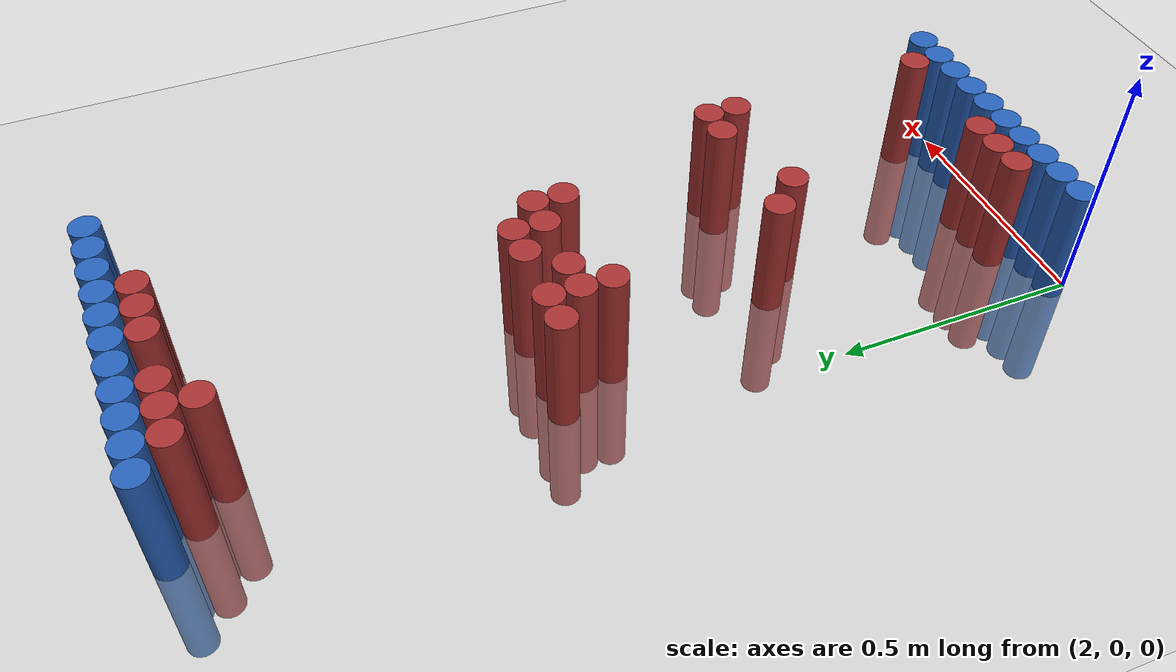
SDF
<sdf version="1.6">
 <world name="default">
  <model name="ground_plane">
   <static>1</static>
   <link name="link">
    <collision name="collision">
     <geometry><plane><normal>0 0 1</normal><size>100 100</size></plane></geometry>
     <surface><friction><ode><mu>100</mu><mu2>50</mu2></ode></friction></surface>
    </collision>
    <visual name="visual">
     <cast_shadows>0</cast_shadows>
     <geometry><plane><normal>0 0 1</normal><size>100 100</size></plane></geometry>
     <material>
      <script><uri>file://media/materials/scripts/gazebo.material</uri><name>Gazebo/Grey</name></script>
     </material>
    </visual>
   </link>
  </model>
  <model name="unit_cylinder_93">
   <static>1</static>
   <pose>2.010000 0.030000 0.000000 0.000000 0.000000 0.000000</pose>
   <link name="link">
    <inertial>
     <mass>1</mass>
     <inertia><ixx>0.145833</ixx><ixy>0</ixy><ixz>0</ixz><iyy>0.145833</iyy><iyz>0</iyz><izz>0.125</izz></inertia>
    </inertial>
    <collision name="collision">
     <geometry><cylinder><radius>0.030000</radius><length>0.5</length></cylinder></geometry>
    </collision>
    <visual name="visual">
     <geometry><cylinder><radius>0.030000</radius><length>0.5</length></cylinder></geometry>
     <material>
      <ambient>0.152000 0.379000 0.720000 1</ambient>
      <diffuse>0.152000 0.379000 0.720000 1</diffuse>
     </material>
     <material>
      <script><name>Gazebo/Grey</name><uri>file://media/materials/scripts/gazebo.material</uri></script>
     </material>
    </visual>
   </link>
  </model>
  <model name="unit_cylinder_94">
   <static>1</static>
   <pose>2.010000 1.770000 0.000000 0.000000 0.000000 0.000000</pose>
   <link name="link">
    <inertial>
     <mass>1</mass>
     <inertia><ixx>0.145833</ixx><ixy>0</ixy><ixz>0</ixz><iyy>0.145833</iyy><iyz>0</iyz><izz>0.125</izz></inertia>
    </inertial>
    <collision name="collision">
     <geometry><cylinder><radius>0.030000</radius><length>0.5</length></cylinder></geometry>
    </collision>
    <visual name="visual">
     <geometry><cylinder><radius>0.030000</radius><length>0.5</length></cylinder></geometry>
     <material>
      <ambient>0.152000 0.379000 0.720000 1</ambient>
      <diffuse>0.152000 0.379000 0.720000 1</diffuse>
     </material>
     <material>
      <script><name>Gazebo/Grey</name><uri>file://media/materials/scripts/gazebo.material</uri></script>
     </material>
    </visual>
   </link>
  </model>
  <model name="unit_cylinder_95">
   <static>1</static>
   <pose>2.070000 1.770000 0.000000 0.000000 0.000000 0.000000</pose>
   <link name="link">
    <inertial>
     <mass>1</mass>
     <inertia><ixx>0.145833</ixx><ixy>0</ixy><ixz>0</ixz><iyy>0.145833</iyy><iyz>0</iyz><izz>0.125</izz></inertia>
    </inertial>
    <collision name="collision">
     <geometry><cylinder><radius>0.030000</radius><length>0.5</length></cylinder></geometry>
    </collision>
    <visual name="visual">
     <geometry><cylinder><radius>0.030000</radius><length>0.5</length></cylinder></geometry>
     <material>
      <ambient>0.152000 0.379000 0.720000 1</ambient>
      <diffuse>0.152000 0.379000 0.720000 1</diffuse>
     </material>
     <material>
      <script><name>Gazebo/Grey</name><uri>file://media/materials/scripts/gazebo.material</uri></script>
     </material>
    </visual>
   </link>
  </model>
  <model name="unit_cylinder_96">
   <static>1</static>
   <pose>2.130000 1.770000 0.000000 0.000000 0.000000 0.000000</pose>
   <link name="link">
    <inertial>
     <mass>1</mass>
     <inertia><ixx>0.145833</ixx><ixy>0</ixy><ixz>0</ixz><iyy>0.145833</iyy><iyz>0</iyz><izz>0.125</izz></inertia>
    </inertial>
    <collision name="collision">
     <geometry><cylinder><radius>0.030000</radius><length>0.5</length></cylinder></geometry>
    </collision>
    <visual name="visual">
     <geometry><cylinder><radius>0.030000</radius><length>0.5</length></cylinder></geometry>
     <material>
      <ambient>0.152000 0.379000 0.720000 1</ambient>
      <diffuse>0.152000 0.379000 0.720000 1</diffuse>
     </material>
     <material>
      <script><name>Gazebo/Grey</name><uri>file://media/materials/scripts/gazebo.material</uri></script>
     </material>
    </visual>
   </link>
  </model>
  <model name="unit_cylinder_97">
   <static>1</static>
   <pose>2.190000 1.770000 0.000000 0.000000 0.000000 0.000000</pose>
   <link name="link">
    <inertial>
     <mass>1</mass>
     <inertia><ixx>0.145833</ixx><ixy>0</ixy><ixz>0</ixz><iyy>0.145833</iyy><iyz>0</iyz><izz>0.125</izz></inertia>
    </inertial>
    <collision name="collision">
     <geometry><cylinder><radius>0.030000</radius><length>0.5</length></cylinder></geometry>
    </collision>
    <visual name="visual">
     <geometry><cylinder><radius>0.030000</radius><length>0.5</length></cylinder></geometry>
     <material>
      <ambient>0.152000 0.379000 0.720000 1</ambient>
      <diffuse>0.152000 0.379000 0.720000 1</diffuse>
     </material>
     <material>
      <script><name>Gazebo/Grey</name><uri>file://media/materials/scripts/gazebo.material</uri></script>
     </material>
    </visual>
   </link>
  </model>
  <model name="unit_cylinder_98">
   <static>1</static>
   <pose>2.250000 1.770000 0.000000 0.000000 0.000000 0.000000</pose>
   <link name="link">
    <inertial>
     <mass>1</mass>
     <inertia><ixx>0.145833</ixx><ixy>0</ixy><ixz>0</ixz><iyy>0.145833</iyy><iyz>0</iyz><izz>0.125</izz></inertia>
    </inertial>
    <collision name="collision">
     <geometry><cylinder><radius>0.030000</radius><length>0.5</length></cylinder></geometry>
    </collision>
    <visual name="visual">
     <geometry><cylinder><radius>0.030000</radius><length>0.5</length></cylinder></geometry>
     <material>
      <ambient>0.152000 0.379000 0.720000 1</ambient>
      <diffuse>0.152000 0.379000 0.720000 1</diffuse>
     </material>
     <material>
      <script><name>Gazebo/Grey</name><uri>file://media/materials/scripts/gazebo.material</uri></script>
     </material>
    </visual>
   </link>
  </model>
  <model name="unit_cylinder_99">
   <static>1</static>
   <pose>2.310000 1.770000 0.000000 0.000000 0.000000 0.000000</pose>
   <link name="link">
    <inertial>
     <mass>1</mass>
     <inertia><ixx>0.145833</ixx><ixy>0</ixy><ixz>0</ixz><iyy>0.145833</iyy><iyz>0</iyz><izz>0.125</izz></inertia>
    </inertial>
    <collision name="collision">
     <geometry><cylinder><radius>0.030000</radius><length>0.5</length></cylinder></geometry>
    </collision>
    <visual name="visual">
     <geometry><cylinder><radius>0.030000</radius><length>0.5</length></cylinder></geometry>
     <material>
      <ambient>0.152000 0.379000 0.720000 1</ambient>
      <diffuse>0.152000 0.379000 0.720000 1</diffuse>
     </material>
     <material>
      <script><name>Gazebo/Grey</name><uri>file://media/materials/scripts/gazebo.material</uri></script>
     </material>
    </visual>
   </link>
  </model>
  <model name="unit_cylinder_100">
   <static>1</static>
   <pose>2.370000 1.770000 0.000000 0.000000 0.000000 0.000000</pose>
   <link name="link">
    <inertial>
     <mass>1</mass>
     <inertia><ixx>0.145833</ixx><ixy>0</ixy><ixz>0</ixz><iyy>0.145833</iyy><iyz>0</iyz><izz>0.125</izz></inertia>
    </inertial>
    <collision name="collision">
     <geometry><cylinder><radius>0.030000</radius><length>0.5</length></cylinder></geometry>
    </collision>
    <visual name="visual">
     <geometry><cylinder><radius>0.030000</radius><length>0.5</length></cylinder></geometry>
     <material>
      <ambient>0.152000 0.379000 0.720000 1</ambient>
      <diffuse>0.152000 0.379000 0.720000 1</diffuse>
     </material>
     <material>
      <script><name>Gazebo/Grey</name><uri>file://media/materials/scripts/gazebo.material</uri></script>
     </material>
    </visual>
   </link>
  </model>
  <model name="unit_cylinder_101">
   <static>1</static>
   <pose>2.430000 1.770000 0.000000 0.000000 0.000000 0.000000</pose>
   <link name="link">
    <inertial>
     <mass>1</mass>
     <inertia><ixx>0.145833</ixx><ixy>0</ixy><ixz>0</ixz><iyy>0.145833</iyy><iyz>0</iyz><izz>0.125</izz></inertia>
    </inertial>
    <collision name="collision">
     <geometry><cylinder><radius>0.030000</radius><length>0.5</length></cylinder></geometry>
    </collision>
    <visual name="visual">
     <geometry><cylinder><radius>0.030000</radius><length>0.5</length></cylinder></geometry>
     <material>
      <ambient>0.152000 0.379000 0.720000 1</ambient>
      <diffuse>0.152000 0.379000 0.720000 1</diffuse>
     </material>
     <material>
      <script><name>Gazebo/Grey</name><uri>file://media/materials/scripts/gazebo.material</uri></script>
     </material>
    </visual>
   </link>
  </model>
  <model name="unit_cylinder_102">
   <static>1</static>
   <pose>2.490000 1.770000 0.000000 0.000000 0.000000 0.000000</pose>
   <link name="link">
    <inertial>
     <mass>1</mass>
     <inertia><ixx>0.145833</ixx><ixy>0</ixy><ixz>0</ixz><iyy>0.145833</iyy><iyz>0</iyz><izz>0.125</izz></inertia>
    </inertial>
    <collision name="collision">
     <geometry><cylinder><radius>0.030000</radius><length>0.5</length></cylinder></geometry>
    </collision>
    <visual name="visual">
     <geometry><cylinder><radius>0.030000</radius><length>0.5</length></cylinder></geometry>
     <material>
      <ambient>0.152000 0.379000 0.720000 1</ambient>
      <diffuse>0.152000 0.379000 0.720000 1</diffuse>
     </material>
     <material>
      <script><name>Gazebo/Grey</name><uri>file://media/materials/scripts/gazebo.material</uri></script>
     </material>
    </visual>
   </link>
  </model>
  <model name="unit_cylinder_103">
   <static>1</static>
   <pose>2.550000 1.770000 0.000000 0.000000 0.000000 0.000000</pose>
   <link name="link">
    <inertial>
     <mass>1</mass>
     <inertia><ixx>0.145833</ixx><ixy>0</ixy><ixz>0</ixz><iyy>0.145833</iyy><iyz>0</iyz><izz>0.125</izz></inertia>
    </inertial>
    <collision name="collision">
     <geometry><cylinder><radius>0.030000</radius><length>0.5</length></cylinder></geometry>
    </collision>
    <visual name="visual">
     <geometry><cylinder><radius>0.030000</radius><length>0.5</length></cylinder></geometry>
     <material>
      <ambient>0.152000 0.379000 0.720000 1</ambient>
      <diffuse>0.152000 0.379000 0.720000 1</diffuse>
     </material>
     <material>
      <script><name>Gazebo/Grey</name><uri>file://media/materials/scripts/gazebo.material</uri></script>
     </material>
    </visual>
   </link>
  </model>
  <model name="unit_cylinder_104">
   <static>1</static>
   <pose>2.610000 1.770000 0.000000 0.000000 0.000000 0.000000</pose>
   <link name="link">
    <inertial>
     <mass>1</mass>
     <inertia><ixx>0.145833</ixx><ixy>0</ixy><ixz>0</ixz><iyy>0.145833</iyy><iyz>0</iyz><izz>0.125</izz></inertia>
    </inertial>
    <collision name="collision">
     <geometry><cylinder><radius>0.030000</radius><length>0.5</length></cylinder></geometry>
    </collision>
    <visual name="visual">
     <geometry><cylinder><radius>0.030000</radius><length>0.5</length></cylinder></geometry>
     <material>
      <ambient>0.152000 0.379000 0.720000 1</ambient>
      <diffuse>0.152000 0.379000 0.720000 1</diffuse>
     </material>
     <material>
      <script><name>Gazebo/Grey</name><uri>file://media/materials/scripts/gazebo.material</uri></script>
     </material>
    </visual>
   </link>
  </model>
  <model name="unit_cylinder_125">
   <static>1</static>
   <pose>2.070000 1.710000 0.000000 0.000000 0.000000 0.000000</pose>
   <link name="link">
    <inertial>
     <mass>1</mass>
     <inertia><ixx>0.145833</ixx><ixy>0</ixy><ixz>0</ixz><iyy>0.145833</iyy><iyz>0</iyz><izz>0.125</izz></inertia>
    </inertial>
    <collision name="collision">
     <geometry><cylinder><radius>0.030000</radius><length>0.5</length></cylinder></geometry>
    </collision>
    <visual name="visual">
     <geometry><cylinder><radius>0.030000</radius><length>0.5</length></cylinder></geometry>
     <material>
      <ambient>0.648000 0.192000 0.192000 1</ambient>
      <diffuse>0.648000 0.192000 0.192000 1</diffuse>
     </material>
     <material>
      <script><name>Gazebo/Grey</name><uri>file://media/materials/scripts/gazebo.material</uri></script>
     </material>
    </visual>
   </link>
  </model>
  <model name="unit_cylinder_126">
   <static>1</static>
   <pose>2.130000 1.710000 0.000000 0.000000 0.000000 0.000000</pose>
   <link name="link">
    <inertial>
     <mass>1</mass>
     <inertia><ixx>0.145833</ixx><ixy>0</ixy><ixz>0</ixz><iyy>0.145833</iyy><iyz>0</iyz><izz>0.125</izz></inertia>
    </inertial>
    <collision name="collision">
     <geometry><cylinder><radius>0.030000</radius><length>0.5</length></cylinder></geometry>
    </collision>
    <visual name="visual">
     <geometry><cylinder><radius>0.030000</radius><length>0.5</length></cylinder></geometry>
     <material>
      <ambient>0.648000 0.192000 0.192000 1</ambient>
      <diffuse>0.648000 0.192000 0.192000 1</diffuse>
     </material>
     <material>
      <script><name>Gazebo/Grey</name><uri>file://media/materials/scripts/gazebo.material</uri></script>
     </material>
    </visual>
   </link>
  </model>
  <model name="unit_cylinder_127">
   <static>1</static>
   <pose>2.190000 1.710000 0.000000 0.000000 0.000000 0.000000</pose>
   <link name="link">
    <inertial>
     <mass>1</mass>
     <inertia><ixx>0.145833</ixx><ixy>0</ixy><ixz>0</ixz><iyy>0.145833</iyy><iyz>0</iyz><izz>0.125</izz></inertia>
    </inertial>
    <collision name="collision">
     <geometry><cylinder><radius>0.030000</radius><length>0.5</length></cylinder></geometry>
    </collision>
    <visual name="visual">
     <geometry><cylinder><radius>0.030000</radius><length>0.5</length></cylinder></geometry>
     <material>
      <ambient>0.648000 0.192000 0.192000 1</ambient>
      <diffuse>0.648000 0.192000 0.192000 1</diffuse>
     </material>
     <material>
      <script><name>Gazebo/Grey</name><uri>file://media/materials/scripts/gazebo.material</uri></script>
     </material>
    </visual>
   </link>
  </model>
  <model name="unit_cylinder_128">
   <static>1</static>
   <pose>2.310000 1.710000 0.000000 0.000000 0.000000 0.000000</pose>
   <link name="link">
    <inertial>
     <mass>1</mass>
     <inertia><ixx>0.145833</ixx><ixy>0</ixy><ixz>0</ixz><iyy>0.145833</iyy><iyz>0</iyz><izz>0.125</izz></inertia>
    </inertial>
    <collision name="collision">
     <geometry><cylinder><radius>0.030000</radius><length>0.5</length></cylinder></geometry>
    </collision>
    <visual name="visual">
     <geometry><cylinder><radius>0.030000</radius><length>0.5</length></cylinder></geometry>
     <material>
      <ambient>0.648000 0.192000 0.192000 1</ambient>
      <diffuse>0.648000 0.192000 0.192000 1</diffuse>
     </material>
     <material>
      <script><name>Gazebo/Grey</name><uri>file://media/materials/scripts/gazebo.material</uri></script>
     </material>
    </visual>
   </link>
  </model>
  <model name="unit_cylinder_129">
   <static>1</static>
   <pose>2.370000 1.710000 0.000000 0.000000 0.000000 0.000000</pose>
   <link name="link">
    <inertial>
     <mass>1</mass>
     <inertia><ixx>0.145833</ixx><ixy>0</ixy><ixz>0</ixz><iyy>0.145833</iyy><iyz>0</iyz><izz>0.125</izz></inertia>
    </inertial>
    <collision name="collision">
     <geometry><cylinder><radius>0.030000</radius><length>0.5</length></cylinder></geometry>
    </collision>
    <visual name="visual">
     <geometry><cylinder><radius>0.030000</radius><length>0.5</length></cylinder></geometry>
     <material>
      <ambient>0.648000 0.192000 0.192000 1</ambient>
      <diffuse>0.648000 0.192000 0.192000 1</diffuse>
     </material>
     <material>
      <script><name>Gazebo/Grey</name><uri>file://media/materials/scripts/gazebo.material</uri></script>
     </material>
    </visual>
   </link>
  </model>
  <model name="unit_cylinder_130">
   <static>1</static>
   <pose>2.430000 1.710000 0.000000 0.000000 0.000000 0.000000</pose>
   <link name="link">
    <inertial>
     <mass>1</mass>
     <inertia><ixx>0.145833</ixx><ixy>0</ixy><ixz>0</ixz><iyy>0.145833</iyy><iyz>0</iyz><izz>0.125</izz></inertia>
    </inertial>
    <collision name="collision">
     <geometry><cylinder><radius>0.030000</radius><length>0.5</length></cylinder></geometry>
    </collision>
    <visual name="visual">
     <geometry><cylinder><radius>0.030000</radius><length>0.5</length></cylinder></geometry>
     <material>
      <ambient>0.648000 0.192000 0.192000 1</ambient>
      <diffuse>0.648000 0.192000 0.192000 1</diffuse>
     </material>
     <material>
      <script><name>Gazebo/Grey</name><uri>file://media/materials/scripts/gazebo.material</uri></script>
     </material>
    </visual>
   </link>
  </model>
  <model name="unit_cylinder_140">
   <static>1</static>
   <pose>2.130000 1.650000 0.000000 0.000000 0.000000 0.000000</pose>
   <link name="link">
    <inertial>
     <mass>1</mass>
     <inertia><ixx>0.145833</ixx><ixy>0</ixy><ixz>0</ixz><iyy>0.145833</iyy><iyz>0</iyz><izz>0.125</izz></inertia>
    </inertial>
    <collision name="collision">
     <geometry><cylinder><radius>0.030000</radius><length>0.5</length></cylinder></geometry>
    </collision>
    <visual name="visual">
     <geometry><cylinder><radius>0.030000</radius><length>0.5</length></cylinder></geometry>
     <material>
      <ambient>0.648000 0.192000 0.192000 1</ambient>
      <diffuse>0.648000 0.192000 0.192000 1</diffuse>
     </material>
     <material>
      <script><name>Gazebo/Grey</name><uri>file://media/materials/scripts/gazebo.material</uri></script>
     </material>
    </visual>
   </link>
  </model>
  <model name="unit_cylinder_158">
   <static>1</static>
   <pose>2.070000 1.050000 0.000000 0.000000 0.000000 0.000000</pose>
   <link name="link">
    <inertial>
     <mass>1</mass>
     <inertia><ixx>0.145833</ixx><ixy>0</ixy><ixz>0</ixz><iyy>0.145833</iyy><iyz>0</iyz><izz>0.125</izz></inertia>
    </inertial>
    <collision name="collision">
     <geometry><cylinder><radius>0.030000</radius><length>0.5</length></cylinder></geometry>
    </collision>
    <visual name="visual">
     <geometry><cylinder><radius>0.030000</radius><length>0.5</length></cylinder></geometry>
     <material>
      <ambient>0.648000 0.192000 0.192000 1</ambient>
      <diffuse>0.648000 0.192000 0.192000 1</diffuse>
     </material>
     <material>
      <script><name>Gazebo/Grey</name><uri>file://media/materials/scripts/gazebo.material</uri></script>
     </material>
    </visual>
   </link>
  </model>
  <model name="unit_cylinder_159">
   <static>1</static>
   <pose>2.130000 1.050000 0.000000 0.000000 0.000000 0.000000</pose>
   <link name="link">
    <inertial>
     <mass>1</mass>
     <inertia><ixx>0.145833</ixx><ixy>0</ixy><ixz>0</ixz><iyy>0.145833</iyy><iyz>0</iyz><izz>0.125</izz></inertia>
    </inertial>
    <collision name="collision">
     <geometry><cylinder><radius>0.030000</radius><length>0.5</length></cylinder></geometry>
    </collision>
    <visual name="visual">
     <geometry><cylinder><radius>0.030000</radius><length>0.5</length></cylinder></geometry>
     <material>
      <ambient>0.648000 0.192000 0.192000 1</ambient>
      <diffuse>0.648000 0.192000 0.192000 1</diffuse>
     </material>
     <material>
      <script><name>Gazebo/Grey</name><uri>file://media/materials/scripts/gazebo.material</uri></script>
     </material>
    </visual>
   </link>
  </model>
  <model name="unit_cylinder_160">
   <static>1</static>
   <pose>2.250000 1.050000 0.000000 0.000000 0.000000 0.000000</pose>
   <link name="link">
    <inertial>
     <mass>1</mass>
     <inertia><ixx>0.145833</ixx><ixy>0</ixy><ixz>0</ixz><iyy>0.145833</iyy><iyz>0</iyz><izz>0.125</izz></inertia>
    </inertial>
    <collision name="collision">
     <geometry><cylinder><radius>0.030000</radius><length>0.5</length></cylinder></geometry>
    </collision>
    <visual name="visual">
     <geometry><cylinder><radius>0.030000</radius><length>0.5</length></cylinder></geometry>
     <material>
      <ambient>0.648000 0.192000 0.192000 1</ambient>
      <diffuse>0.648000 0.192000 0.192000 1</diffuse>
     </material>
     <material>
      <script><name>Gazebo/Grey</name><uri>file://media/materials/scripts/gazebo.material</uri></script>
     </material>
    </visual>
   </link>
  </model>
  <model name="unit_cylinder_161">
   <static>1</static>
   <pose>2.310000 1.050000 0.000000 0.000000 0.000000 0.000000</pose>
   <link name="link">
    <inertial>
     <mass>1</mass>
     <inertia><ixx>0.145833</ixx><ixy>0</ixy><ixz>0</ixz><iyy>0.145833</iyy><iyz>0</iyz><izz>0.125</izz></inertia>
    </inertial>
    <collision name="collision">
     <geometry><cylinder><radius>0.030000</radius><length>0.5</length></cylinder></geometry>
    </collision>
    <visual name="visual">
     <geometry><cylinder><radius>0.030000</radius><length>0.5</length></cylinder></geometry>
     <material>
      <ambient>0.648000 0.192000 0.192000 1</ambient>
      <diffuse>0.648000 0.192000 0.192000 1</diffuse>
     </material>
     <material>
      <script><name>Gazebo/Grey</name><uri>file://media/materials/scripts/gazebo.material</uri></script>
     </material>
    </visual>
   </link>
  </model>
  <model name="unit_cylinder_162">
   <static>1</static>
   <pose>2.130000 0.990000 0.000000 0.000000 0.000000 0.000000</pose>
   <link name="link">
    <inertial>
     <mass>1</mass>
     <inertia><ixx>0.145833</ixx><ixy>0</ixy><ixz>0</ixz><iyy>0.145833</iyy><iyz>0</iyz><izz>0.125</izz></inertia>
    </inertial>
    <collision name="collision">
     <geometry><cylinder><radius>0.030000</radius><length>0.5</length></cylinder></geometry>
    </collision>
    <visual name="visual">
     <geometry><cylinder><radius>0.030000</radius><length>0.5</length></cylinder></geometry>
     <material>
      <ambient>0.648000 0.192000 0.192000 1</ambient>
      <diffuse>0.648000 0.192000 0.192000 1</diffuse>
     </material>
     <material>
      <script><name>Gazebo/Grey</name><uri>file://media/materials/scripts/gazebo.material</uri></script>
     </material>
    </visual>
   </link>
  </model>
  <model name="unit_cylinder_163">
   <static>1</static>
   <pose>2.190000 0.990000 0.000000 0.000000 0.000000 0.000000</pose>
   <link name="link">
    <inertial>
     <mass>1</mass>
     <inertia><ixx>0.145833</ixx><ixy>0</ixy><ixz>0</ixz><iyy>0.145833</iyy><iyz>0</iyz><izz>0.125</izz></inertia>
    </inertial>
    <collision name="collision">
     <geometry><cylinder><radius>0.030000</radius><length>0.5</length></cylinder></geometry>
    </collision>
    <visual name="visual">
     <geometry><cylinder><radius>0.030000</radius><length>0.5</length></cylinder></geometry>
     <material>
      <ambient>0.648000 0.192000 0.192000 1</ambient>
      <diffuse>0.648000 0.192000 0.192000 1</diffuse>
     </material>
     <material>
      <script><name>Gazebo/Grey</name><uri>file://media/materials/scripts/gazebo.material</uri></script>
     </material>
    </visual>
   </link>
  </model>
  <model name="unit_cylinder_164">
   <static>1</static>
   <pose>2.310000 0.990000 0.000000 0.000000 0.000000 0.000000</pose>
   <link name="link">
    <inertial>
     <mass>1</mass>
     <inertia><ixx>0.145833</ixx><ixy>0</ixy><ixz>0</ixz><iyy>0.145833</iyy><iyz>0</iyz><izz>0.125</izz></inertia>
    </inertial>
    <collision name="collision">
     <geometry><cylinder><radius>0.030000</radius><length>0.5</length></cylinder></geometry>
    </collision>
    <visual name="visual">
     <geometry><cylinder><radius>0.030000</radius><length>0.5</length></cylinder></geometry>
     <material>
      <ambient>0.648000 0.192000 0.192000 1</ambient>
      <diffuse>0.648000 0.192000 0.192000 1</diffuse>
     </material>
     <material>
      <script><name>Gazebo/Grey</name><uri>file://media/materials/scripts/gazebo.material</uri></script>
     </material>
    </visual>
   </link>
  </model>
  <model name="unit_cylinder_165">
   <static>1</static>
   <pose>2.370000 0.990000 0.000000 0.000000 0.000000 0.000000</pose>
   <link name="link">
    <inertial>
     <mass>1</mass>
     <inertia><ixx>0.145833</ixx><ixy>0</ixy><ixz>0</ixz><iyy>0.145833</iyy><iyz>0</iyz><izz>0.125</izz></inertia>
    </inertial>
    <collision name="collision">
     <geometry><cylinder><radius>0.030000</radius><length>0.5</length></cylinder></geometry>
    </collision>
    <visual name="visual">
     <geometry><cylinder><radius>0.030000</radius><length>0.5</length></cylinder></geometry>
     <material>
      <ambient>0.648000 0.192000 0.192000 1</ambient>
      <diffuse>0.648000 0.192000 0.192000 1</diffuse>
     </material>
     <material>
      <script><name>Gazebo/Grey</name><uri>file://media/materials/scripts/gazebo.material</uri></script>
     </material>
    </visual>
   </link>
  </model>
  <model name="unit_cylinder_167">
   <static>1</static>
   <pose>2.130000 0.930000 0.000000 0.000000 0.000000 0.000000</pose>
   <link name="link">
    <inertial>
     <mass>1</mass>
     <inertia><ixx>0.145833</ixx><ixy>0</ixy><ixz>0</ixz><iyy>0.145833</iyy><iyz>0</iyz><izz>0.125</izz></inertia>
    </inertial>
    <collision name="collision">
     <geometry><cylinder><radius>0.030000</radius><length>0.5</length></cylinder></geometry>
    </collision>
    <visual name="visual">
     <geometry><cylinder><radius>0.030000</radius><length>0.5</length></cylinder></geometry>
     <material>
      <ambient>0.648000 0.192000 0.192000 1</ambient>
      <diffuse>0.648000 0.192000 0.192000 1</diffuse>
     </material>
     <material>
      <script><name>Gazebo/Grey</name><uri>file://media/materials/scripts/gazebo.material</uri></script>
     </material>
    </visual>
   </link>
  </model>
  <model name="unit_cylinder_168">
   <static>1</static>
   <pose>2.370000 0.930000 0.000000 0.000000 0.000000 0.000000</pose>
   <link name="link">
    <inertial>
     <mass>1</mass>
     <inertia><ixx>0.145833</ixx><ixy>0</ixy><ixz>0</ixz><iyy>0.145833</iyy><iyz>0</iyz><izz>0.125</izz></inertia>
    </inertial>
    <collision name="collision">
     <geometry><cylinder><radius>0.030000</radius><length>0.5</length></cylinder></geometry>
    </collision>
    <visual name="visual">
     <geometry><cylinder><radius>0.030000</radius><length>0.5</length></cylinder></geometry>
     <material>
      <ambient>0.648000 0.192000 0.192000 1</ambient>
      <diffuse>0.648000 0.192000 0.192000 1</diffuse>
     </material>
     <material>
      <script><name>Gazebo/Grey</name><uri>file://media/materials/scripts/gazebo.material</uri></script>
     </material>
    </visual>
   </link>
  </model>
  <model name="unit_cylinder_181">
   <static>1</static>
   <pose>2.190000 0.570000 0.000000 0.000000 0.000000 0.000000</pose>
   <link name="link">
    <inertial>
     <mass>1</mass>
     <inertia><ixx>0.145833</ixx><ixy>0</ixy><ixz>0</ixz><iyy>0.145833</iyy><iyz>0</iyz><izz>0.125</izz></inertia>
    </inertial>
    <collision name="collision">
     <geometry><cylinder><radius>0.030000</radius><length>0.5</length></cylinder></geometry>
    </collision>
    <visual name="visual">
     <geometry><cylinder><radius>0.030000</radius><length>0.5</length></cylinder></geometry>
     <material>
      <ambient>0.648000 0.192000 0.192000 1</ambient>
      <diffuse>0.648000 0.192000 0.192000 1</diffuse>
     </material>
     <material>
      <script><name>Gazebo/Grey</name><uri>file://media/materials/scripts/gazebo.material</uri></script>
     </material>
    </visual>
   </link>
  </model>
  <model name="unit_cylinder_182">
   <static>1</static>
   <pose>2.430000 0.570000 0.000000 0.000000 0.000000 0.000000</pose>
   <link name="link">
    <inertial>
     <mass>1</mass>
     <inertia><ixx>0.145833</ixx><ixy>0</ixy><ixz>0</ixz><iyy>0.145833</iyy><iyz>0</iyz><izz>0.125</izz></inertia>
    </inertial>
    <collision name="collision">
     <geometry><cylinder><radius>0.030000</radius><length>0.5</length></cylinder></geometry>
    </collision>
    <visual name="visual">
     <geometry><cylinder><radius>0.030000</radius><length>0.5</length></cylinder></geometry>
     <material>
      <ambient>0.648000 0.192000 0.192000 1</ambient>
      <diffuse>0.648000 0.192000 0.192000 1</diffuse>
     </material>
     <material>
      <script><name>Gazebo/Grey</name><uri>file://media/materials/scripts/gazebo.material</uri></script>
     </material>
    </visual>
   </link>
  </model>
  <model name="unit_cylinder_183">
   <static>1</static>
   <pose>2.490000 0.570000 0.000000 0.000000 0.000000 0.000000</pose>
   <link name="link">
    <inertial>
     <mass>1</mass>
     <inertia><ixx>0.145833</ixx><ixy>0</ixy><ixz>0</ixz><iyy>0.145833</iyy><iyz>0</iyz><izz>0.125</izz></inertia>
    </inertial>
    <collision name="collision">
     <geometry><cylinder><radius>0.030000</radius><length>0.5</length></cylinder></geometry>
    </collision>
    <visual name="visual">
     <geometry><cylinder><radius>0.030000</radius><length>0.5</length></cylinder></geometry>
     <material>
      <ambient>0.648000 0.192000 0.192000 1</ambient>
      <diffuse>0.648000 0.192000 0.192000 1</diffuse>
     </material>
     <material>
      <script><name>Gazebo/Grey</name><uri>file://media/materials/scripts/gazebo.material</uri></script>
     </material>
    </visual>
   </link>
  </model>
  <model name="unit_cylinder_185">
   <static>1</static>
   <pose>2.250000 0.510000 0.000000 0.000000 0.000000 0.000000</pose>
   <link name="link">
    <inertial>
     <mass>1</mass>
     <inertia><ixx>0.145833</ixx><ixy>0</ixy><ixz>0</ixz><iyy>0.145833</iyy><iyz>0</iyz><izz>0.125</izz></inertia>
    </inertial>
    <collision name="collision">
     <geometry><cylinder><radius>0.030000</radius><length>0.5</length></cylinder></geometry>
    </collision>
    <visual name="visual">
     <geometry><cylinder><radius>0.030000</radius><length>0.5</length></cylinder></geometry>
     <material>
      <ambient>0.648000 0.192000 0.192000 1</ambient>
      <diffuse>0.648000 0.192000 0.192000 1</diffuse>
     </material>
     <material>
      <script><name>Gazebo/Grey</name><uri>file://media/materials/scripts/gazebo.material</uri></script>
     </material>
    </visual>
   </link>
  </model>
  <model name="unit_cylinder_186">
   <static>1</static>
   <pose>2.490000 0.510000 0.000000 0.000000 0.000000 0.000000</pose>
   <link name="link">
    <inertial>
     <mass>1</mass>
     <inertia><ixx>0.145833</ixx><ixy>0</ixy><ixz>0</ixz><iyy>0.145833</iyy><iyz>0</iyz><izz>0.125</izz></inertia>
    </inertial>
    <collision name="collision">
     <geometry><cylinder><radius>0.030000</radius><length>0.5</length></cylinder></geometry>
    </collision>
    <visual name="visual">
     <geometry><cylinder><radius>0.030000</radius><length>0.5</length></cylinder></geometry>
     <material>
      <ambient>0.648000 0.192000 0.192000 1</ambient>
      <diffuse>0.648000 0.192000 0.192000 1</diffuse>
     </material>
     <material>
      <script><name>Gazebo/Grey</name><uri>file://media/materials/scripts/gazebo.material</uri></script>
     </material>
    </visual>
   </link>
  </model>
  <model name="unit_cylinder_194">
   <static>1</static>
   <pose>2.130000 0.090000 0.000000 0.000000 0.000000 0.000000</pose>
   <link name="link">
    <inertial>
     <mass>1</mass>
     <inertia><ixx>0.145833</ixx><ixy>0</ixy><ixz>0</ixz><iyy>0.145833</iyy><iyz>0</iyz><izz>0.125</izz></inertia>
    </inertial>
    <collision name="collision">
     <geometry><cylinder><radius>0.030000</radius><length>0.5</length></cylinder></geometry>
    </collision>
    <visual name="visual">
     <geometry><cylinder><radius>0.030000</radius><length>0.5</length></cylinder></geometry>
     <material>
      <ambient>0.648000 0.192000 0.192000 1</ambient>
      <diffuse>0.648000 0.192000 0.192000 1</diffuse>
     </material>
     <material>
      <script><name>Gazebo/Grey</name><uri>file://media/materials/scripts/gazebo.material</uri></script>
     </material>
    </visual>
   </link>
  </model>
  <model name="unit_cylinder_195">
   <static>1</static>
   <pose>2.190000 0.090000 0.000000 0.000000 0.000000 0.000000</pose>
   <link name="link">
    <inertial>
     <mass>1</mass>
     <inertia><ixx>0.145833</ixx><ixy>0</ixy><ixz>0</ixz><iyy>0.145833</iyy><iyz>0</iyz><izz>0.125</izz></inertia>
    </inertial>
    <collision name="collision">
     <geometry><cylinder><radius>0.030000</radius><length>0.5</length></cylinder></geometry>
    </collision>
    <visual name="visual">
     <geometry><cylinder><radius>0.030000</radius><length>0.5</length></cylinder></geometry>
     <material>
      <ambient>0.648000 0.192000 0.192000 1</ambient>
      <diffuse>0.648000 0.192000 0.192000 1</diffuse>
     </material>
     <material>
      <script><name>Gazebo/Grey</name><uri>file://media/materials/scripts/gazebo.material</uri></script>
     </material>
    </visual>
   </link>
  </model>
  <model name="unit_cylinder_196">
   <static>1</static>
   <pose>2.250000 0.090000 0.000000 0.000000 0.000000 0.000000</pose>
   <link name="link">
    <inertial>
     <mass>1</mass>
     <inertia><ixx>0.145833</ixx><ixy>0</ixy><ixz>0</ixz><iyy>0.145833</iyy><iyz>0</iyz><izz>0.125</izz></inertia>
    </inertial>
    <collision name="collision">
     <geometry><cylinder><radius>0.030000</radius><length>0.5</length></cylinder></geometry>
    </collision>
    <visual name="visual">
     <geometry><cylinder><radius>0.030000</radius><length>0.5</length></cylinder></geometry>
     <material>
      <ambient>0.648000 0.192000 0.192000 1</ambient>
      <diffuse>0.648000 0.192000 0.192000 1</diffuse>
     </material>
     <material>
      <script><name>Gazebo/Grey</name><uri>file://media/materials/scripts/gazebo.material</uri></script>
     </material>
    </visual>
   </link>
  </model>
  <model name="unit_cylinder_197">
   <static>1</static>
   <pose>2.490000 0.090000 0.000000 0.000000 0.000000 0.000000</pose>
   <link name="link">
    <inertial>
     <mass>1</mass>
     <inertia><ixx>0.145833</ixx><ixy>0</ixy><ixz>0</ixz><iyy>0.145833</iyy><iyz>0</iyz><izz>0.125</izz></inertia>
    </inertial>
    <collision name="collision">
     <geometry><cylinder><radius>0.030000</radius><length>0.5</length></cylinder></geometry>
    </collision>
    <visual name="visual">
     <geometry><cylinder><radius>0.030000</radius><length>0.5</length></cylinder></geometry>
     <material>
      <ambient>0.648000 0.192000 0.192000 1</ambient>
      <diffuse>0.648000 0.192000 0.192000 1</diffuse>
     </material>
     <material>
      <script><name>Gazebo/Grey</name><uri>file://media/materials/scripts/gazebo.material</uri></script>
     </material>
    </visual>
   </link>
  </model>
  <model name="unit_cylinder_203">
   <static>1</static>
   <pose>2.070000 0.030000 0.000000 0.000000 0.000000 0.000000</pose>
   <link name="link">
    <inertial>
     <mass>1</mass>
     <inertia><ixx>0.145833</ixx><ixy>0</ixy><ixz>0</ixz><iyy>0.145833</iyy><iyz>0</iyz><izz>0.125</izz></inertia>
    </inertial>
    <collision name="collision">
     <geometry><cylinder><radius>0.030000</radius><length>0.5</length></cylinder></geometry>
    </collision>
    <visual name="visual">
     <geometry><cylinder><radius>0.030000</radius><length>0.5</length></cylinder></geometry>
     <material>
      <ambient>0.152000 0.379000 0.720000 1</ambient>
      <diffuse>0.152000 0.379000 0.720000 1</diffuse>
     </material>
     <material>
      <script><name>Gazebo/Grey</name><uri>file://media/materials/scripts/gazebo.material</uri></script>
     </material>
    </visual>
   </link>
  </model>
  <model name="unit_cylinder_204">
   <static>1</static>
   <pose>2.130000 0.030000 0.000000 0.000000 0.000000 0.000000</pose>
   <link name="link">
    <inertial>
     <mass>1</mass>
     <inertia><ixx>0.145833</ixx><ixy>0</ixy><ixz>0</ixz><iyy>0.145833</iyy><iyz>0</iyz><izz>0.125</izz></inertia>
    </inertial>
    <collision name="collision">
     <geometry><cylinder><radius>0.030000</radius><length>0.5</length></cylinder></geometry>
    </collision>
    <visual name="visual">
     <geometry><cylinder><radius>0.030000</radius><length>0.5</length></cylinder></geometry>
     <material>
      <ambient>0.152000 0.379000 0.720000 1</ambient>
      <diffuse>0.152000 0.379000 0.720000 1</diffuse>
     </material>
     <material>
      <script><name>Gazebo/Grey</name><uri>file://media/materials/scripts/gazebo.material</uri></script>
     </material>
    </visual>
   </link>
  </model>
  <model name="unit_cylinder_205">
   <static>1</static>
   <pose>2.190000 0.030000 0.000000 0.000000 0.000000 0.000000</pose>
   <link name="link">
    <inertial>
     <mass>1</mass>
     <inertia><ixx>0.145833</ixx><ixy>0</ixy><ixz>0</ixz><iyy>0.145833</iyy><iyz>0</iyz><izz>0.125</izz></inertia>
    </inertial>
    <collision name="collision">
     <geometry><cylinder><radius>0.030000</radius><length>0.5</length></cylinder></geometry>
    </collision>
    <visual name="visual">
     <geometry><cylinder><radius>0.030000</radius><length>0.5</length></cylinder></geometry>
     <material>
      <ambient>0.152000 0.379000 0.720000 1</ambient>
      <diffuse>0.152000 0.379000 0.720000 1</diffuse>
     </material>
     <material>
      <script><name>Gazebo/Grey</name><uri>file://media/materials/scripts/gazebo.material</uri></script>
     </material>
    </visual>
   </link>
  </model>
  <model name="unit_cylinder_206">
   <static>1</static>
   <pose>2.250000 0.030000 0.000000 0.000000 0.000000 0.000000</pose>
   <link name="link">
    <inertial>
     <mass>1</mass>
     <inertia><ixx>0.145833</ixx><ixy>0</ixy><ixz>0</ixz><iyy>0.145833</iyy><iyz>0</iyz><izz>0.125</izz></inertia>
    </inertial>
    <collision name="collision">
     <geometry><cylinder><radius>0.030000</radius><length>0.5</length></cylinder></geometry>
    </collision>
    <visual name="visual">
     <geometry><cylinder><radius>0.030000</radius><length>0.5</length></cylinder></geometry>
     <material>
      <ambient>0.152000 0.379000 0.720000 1</ambient>
      <diffuse>0.152000 0.379000 0.720000 1</diffuse>
     </material>
     <material>
      <script><name>Gazebo/Grey</name><uri>file://media/materials/scripts/gazebo.material</uri></script>
     </material>
    </visual>
   </link>
  </model>
  <model name="unit_cylinder_207">
   <static>1</static>
   <pose>2.310000 0.030000 0.000000 0.000000 0.000000 0.000000</pose>
   <link name="link">
    <inertial>
     <mass>1</mass>
     <inertia><ixx>0.145833</ixx><ixy>0</ixy><ixz>0</ixz><iyy>0.145833</iyy><iyz>0</iyz><izz>0.125</izz></inertia>
    </inertial>
    <collision name="collision">
     <geometry><cylinder><radius>0.030000</radius><length>0.5</length></cylinder></geometry>
    </collision>
    <visual name="visual">
     <geometry><cylinder><radius>0.030000</radius><length>0.5</length></cylinder></geometry>
     <material>
      <ambient>0.152000 0.379000 0.720000 1</ambient>
      <diffuse>0.152000 0.379000 0.720000 1</diffuse>
     </material>
     <material>
      <script><name>Gazebo/Grey</name><uri>file://media/materials/scripts/gazebo.material</uri></script>
     </material>
    </visual>
   </link>
  </model>
  <model name="unit_cylinder_208">
   <static>1</static>
   <pose>2.370000 0.030000 0.000000 0.000000 0.000000 0.000000</pose>
   <link name="link">
    <inertial>
     <mass>1</mass>
     <inertia><ixx>0.145833</ixx><ixy>0</ixy><ixz>0</ixz><iyy>0.145833</iyy><iyz>0</iyz><izz>0.125</izz></inertia>
    </inertial>
    <collision name="collision">
     <geometry><cylinder><radius>0.030000</radius><length>0.5</length></cylinder></geometry>
    </collision>
    <visual name="visual">
     <geometry><cylinder><radius>0.030000</radius><length>0.5</length></cylinder></geometry>
     <material>
      <ambient>0.152000 0.379000 0.720000 1</ambient>
      <diffuse>0.152000 0.379000 0.720000 1</diffuse>
     </material>
     <material>
      <script><name>Gazebo/Grey</name><uri>file://media/materials/scripts/gazebo.material</uri></script>
     </material>
    </visual>
   </link>
  </model>
  <model name="unit_cylinder_209">
   <static>1</static>
   <pose>2.430000 0.030000 0.000000 0.000000 0.000000 0.000000</pose>
   <link name="link">
    <inertial>
     <mass>1</mass>
     <inertia><ixx>0.145833</ixx><ixy>0</ixy><ixz>0</ixz><iyy>0.145833</iyy><iyz>0</iyz><izz>0.125</izz></inertia>
    </inertial>
    <collision name="collision">
     <geometry><cylinder><radius>0.030000</radius><length>0.5</length></cylinder></geometry>
    </collision>
    <visual name="visual">
     <geometry><cylinder><radius>0.030000</radius><length>0.5</length></cylinder></geometry>
     <material>
      <ambient>0.152000 0.379000 0.720000 1</ambient>
      <diffuse>0.152000 0.379000 0.720000 1</diffuse>
     </material>
     <material>
      <script><name>Gazebo/Grey</name><uri>file://media/materials/scripts/gazebo.material</uri></script>
     </material>
    </visual>
   </link>
  </model>
  <model name="unit_cylinder_210">
   <static>1</static>
   <pose>2.490000 0.030000 0.000000 0.000000 0.000000 0.000000</pose>
   <link name="link">
    <inertial>
     <mass>1</mass>
     <inertia><ixx>0.145833</ixx><ixy>0</ixy><ixz>0</ixz><iyy>0.145833</iyy><iyz>0</iyz><izz>0.125</izz></inertia>
    </inertial>
    <collision name="collision">
     <geometry><cylinder><radius>0.030000</radius><length>0.5</length></cylinder></geometry>
    </collision>
    <visual name="visual">
     <geometry><cylinder><radius>0.030000</radius><length>0.5</length></cylinder></geometry>
     <material>
      <ambient>0.152000 0.379000 0.720000 1</ambient>
      <diffuse>0.152000 0.379000 0.720000 1</diffuse>
     </material>
     <material>
      <script><name>Gazebo/Grey</name><uri>file://media/materials/scripts/gazebo.material</uri></script>
     </material>
    </visual>
   </link>
  </model>
  <model name="unit_cylinder_211">
   <static>1</static>
   <pose>2.550000 0.030000 0.000000 0.000000 0.000000 0.000000</pose>
   <link name="link">
    <inertial>
     <mass>1</mass>
     <inertia><ixx>0.145833</ixx><ixy>0</ixy><ixz>0</ixz><iyy>0.145833</iyy><iyz>0</iyz><izz>0.125</izz></inertia>
    </inertial>
    <collision name="collision">
     <geometry><cylinder><radius>0.030000</radius><length>0.5</length></cylinder></geometry>
    </collision>
    <visual name="visual">
     <geometry><cylinder><radius>0.030000</radius><length>0.5</length></cylinder></geometry>
     <material>
      <ambient>0.152000 0.379000 0.720000 1</ambient>
      <diffuse>0.152000 0.379000 0.720000 1</diffuse>
     </material>
     <material>
      <script><name>Gazebo/Grey</name><uri>file://media/materials/scripts/gazebo.material</uri></script>
     </material>
    </visual>
   </link>
  </model>
 </world>
</sdf>
